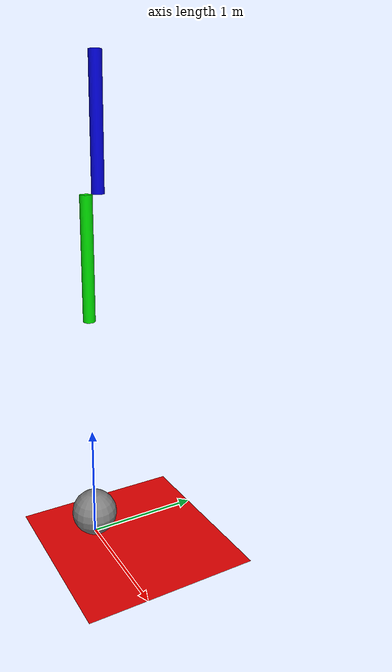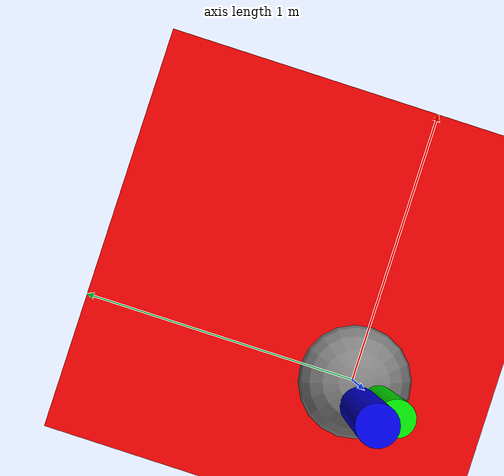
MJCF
<mujoco>
	<option timestep="0.01" integrator="RK4">
		<flag sensornoise="enable" energy="enable"/>
	</option>
	<worldbody>
        <light diffuse=".5 .5 .5" pos="0 0 3" dir="0 0 -1"/>
		<geom type="plane" size="1 1 0.1" rgba=".9 0 0 1"/>

		<body pos="0 0 2.5" euler="0 0 0">
			<joint name="pin" type="hinge" axis = "0 -1 0" pos="0 0 -0.5"/>
			<geom type="cylinder" size="0.05 0.5" rgba="0 .9 0 1" mass="1"/>

			<!-- Second Link -->
			<body pos="0 0.1 1" euler="0 0 0">
				<joint name="pin2" type="hinge" axis = "0 -1 0" pos="0 0 -0.5"/>
				<geom type="cylinder" size="0.05 0.5" rgba="0 0 0.9 1" mass="1"/>
			</body>

		</body>
		<body pos="0 0 0.2" euler="0 0 0">
			<joint type="free"/>
			<geom type="sphere" size="0.2 0.2 0.2" mass="0.2"></geom>
		</body>

	</worldbody>
</mujoco>
